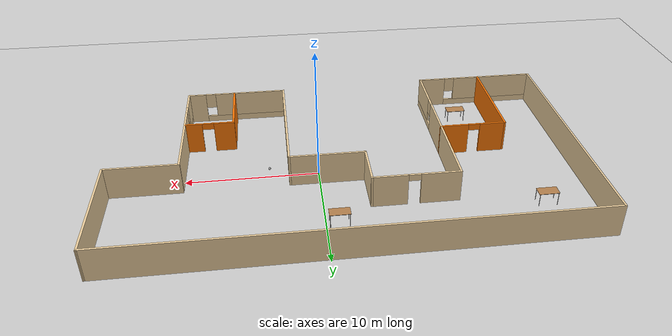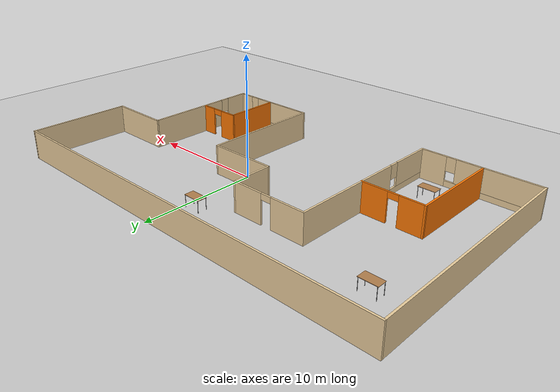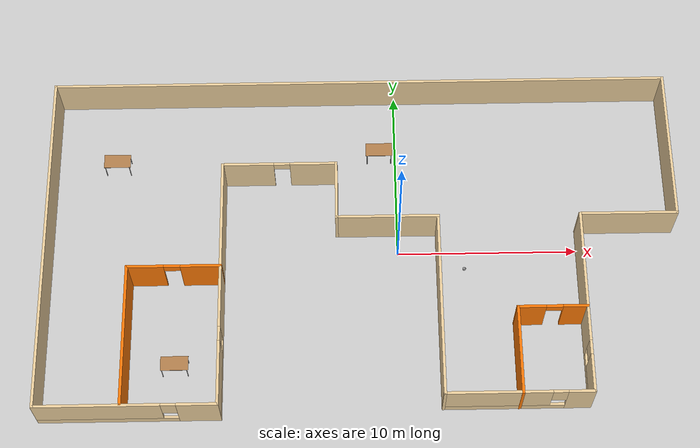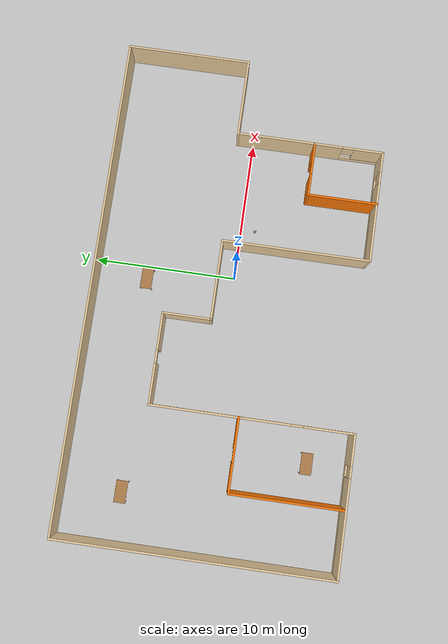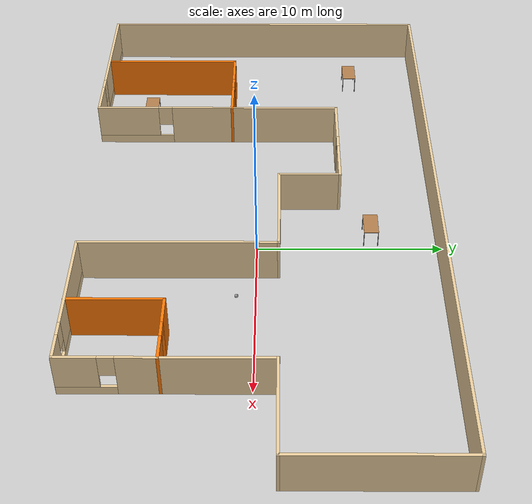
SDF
<sdf version="1.6">
 <world name="default">
  <model name="ground_plane">
   <static>1</static>
   <link name="link">
    <collision name="collision">
     <geometry><plane><normal>0 0 1</normal><size>100 100</size></plane></geometry>
     <surface><friction><ode><mu>100</mu><mu2>50</mu2></ode></friction></surface>
    </collision>
    <visual name="visual">
     <cast_shadows>0</cast_shadows>
     <geometry><plane><normal>0 0 1</normal><size>100 100</size></plane></geometry>
     <material>
      <script><uri>file://media/materials/scripts/gazebo.material</uri><name>Gazebo/Grey</name></script>
     </material>
    </visual>
   </link>
  </model>
  <model name="appartment">
   <pose>-2.009 0.109616 0 0 -0 0</pose>
   <link name="Wall_0">
    <collision name="Wall_0_Collision">
     <geometry><box><size>19.4596 0.15 2.5</size></box></geometry>
     <pose>0 0 1.25 0 -0 0</pose>
    </collision>
    <visual name="Wall_0_Visual">
     <pose>0 0 1.25 0 -0 0</pose>
     <geometry><box><size>19.4596 0.15 2.5</size></box></geometry>
     <material>
      <script><uri>file://media/materials/scripts/gazebo.material</uri><name>Gazebo/Grey</name></script>
      <ambient>0.921569 0.807843 0.615686 1</ambient>
     </material>
     <meta><layer>0</layer></meta>
    </visual>
    <pose>-17.4083 -0.020065 0 0 -0 1.5708</pose>
   </link>
   <link name="Wall_1">
    <collision name="Wall_1_Collision">
     <geometry><box><size>34.9669 0.15 2.5</size></box></geometry>
     <pose>0 0 1.25 0 -0 0</pose>
    </collision>
    <visual name="Wall_1_Visual">
     <pose>0 0 1.25 0 -0 0</pose>
     <geometry><box><size>34.9669 0.15 2.5</size></box></geometry>
     <material>
      <script><uri>file://media/materials/scripts/gazebo.material</uri><name>Gazebo/Grey</name></script>
      <ambient>0.921569 0.807843 0.615686 1</ambient>
     </material>
     <meta><layer>0</layer></meta>
    </visual>
    <pose>0 9.65496 0 0 -0 0.00115</pose>
   </link>
   <link name="Wall_10">
    <pose>-7.7415 -2.62504 0 0 0 -1.57076</pose>
    <visual name="Wall_10_Visual_0">
     <pose>-2.2093 0 1.25 0 -0 0</pose>
     <geometry><box><size>9.8314 0.15 2.5</size></box></geometry>
     <material>
      <script><uri>file://media/materials/scripts/gazebo.material</uri><name>Gazebo/Grey</name></script>
      <ambient>0.921569 0.807843 0.615686 1</ambient>
     </material>
     <meta><layer>0</layer></meta>
    </visual>
    <collision name="Wall_10_Collision_0">
     <geometry><box><size>9.8314 0.15 2.5</size></box></geometry>
     <pose>-2.2093 0 1.25 0 -0 0</pose>
    </collision>
    <visual name="Wall_10_Visual_1">
     <pose>4.9157 0 0.25 0 -0 0</pose>
     <geometry><box><size>4.4186 0.15 0.5</size></box></geometry>
     <material>
      <script><uri>file://media/materials/scripts/gazebo.material</uri><name>Gazebo/Grey</name></script>
      <ambient>0.921569 0.807843 0.615686 1</ambient>
     </material>
     <meta><layer>0</layer></meta>
    </visual>
    <collision name="Wall_10_Collision_1">
     <geometry><box><size>4.4186 0.15 0.5</size></box></geometry>
     <pose>4.9157 0 0.25 0 -0 0</pose>
    </collision>
    <visual name="Wall_10_Visual_2">
     <pose>5.3157 0 1.5 0 -0 0</pose>
     <geometry><box><size>3.6186 0.15 2</size></box></geometry>
     <material>
      <script><uri>file://media/materials/scripts/gazebo.material</uri><name>Gazebo/Grey</name></script>
      <ambient>0.921569 0.807843 0.615686 1</ambient>
     </material>
     <meta><layer>0</layer></meta>
    </visual>
    <collision name="Wall_10_Collision_2">
     <geometry><box><size>3.6186 0.15 2</size></box></geometry>
     <pose>5.3157 0 1.5 0 -0 0</pose>
    </collision>
    <visual name="Wall_10_Visual_3">
     <pose>3.1064 0 1.9 0 -0 0</pose>
     <geometry><box><size>0.8 0.15 1.2</size></box></geometry>
     <material>
      <script><uri>file://media/materials/scripts/gazebo.material</uri><name>Gazebo/Grey</name></script>
      <ambient>0.921569 0.807843 0.615686 1</ambient>
     </material>
     <meta><layer>0</layer></meta>
    </visual>
    <collision name="Wall_10_Collision_3">
     <geometry><box><size>0.8 0.15 1.2</size></box></geometry>
     <pose>3.1064 0 1.9 0 -0 0</pose>
    </collision>
   </link>
   <link name="Wall_11">
    <pose>-12.5748 -9.67507 0 0 -0 3.14159</pose>
    <visual name="Wall_11_Visual_0">
     <pose>-3.79039 0 1.25 0 -0 0</pose>
     <geometry><box><size>2.23622 0.15 2.5</size></box></geometry>
     <material>
      <script><uri>file://media/materials/scripts/gazebo.material</uri><name>Gazebo/Grey</name></script>
      <ambient>0.921569 0.807843 0.615686 1</ambient>
     </material>
     <meta><layer>0</layer></meta>
    </visual>
    <collision name="Wall_11_Collision_0">
     <geometry><box><size>2.23622 0.15 2.5</size></box></geometry>
     <pose>-3.79039 0 1.25 0 -0 0</pose>
    </collision>
    <visual name="Wall_11_Visual_1">
     <pose>1.11811 0 0.25 0 -0 0</pose>
     <geometry><box><size>7.58078 0.15 0.5</size></box></geometry>
     <material>
      <script><uri>file://media/materials/scripts/gazebo.material</uri><name>Gazebo/Grey</name></script>
      <ambient>0.921569 0.807843 0.615686 1</ambient>
     </material>
     <meta><layer>0</layer></meta>
    </visual>
    <collision name="Wall_11_Collision_1">
     <geometry><box><size>7.58078 0.15 0.5</size></box></geometry>
     <pose>1.11811 0 0.25 0 -0 0</pose>
    </collision>
    <visual name="Wall_11_Visual_2">
     <pose>1.51811 0 1.5 0 -0 0</pose>
     <geometry><box><size>6.78078 0.15 2</size></box></geometry>
     <material>
      <script><uri>file://media/materials/scripts/gazebo.material</uri><name>Gazebo/Grey</name></script>
      <ambient>0.921569 0.807843 0.615686 1</ambient>
     </material>
     <meta><layer>0</layer></meta>
    </visual>
    <collision name="Wall_11_Collision_2">
     <geometry><box><size>6.78078 0.15 2</size></box></geometry>
     <pose>1.51811 0 1.5 0 -0 0</pose>
    </collision>
    <visual name="Wall_11_Visual_3">
     <pose>-2.27228 0 1.9 0 -0 0</pose>
     <geometry><box><size>0.8 0.15 1.2</size></box></geometry>
     <material>
      <script><uri>file://media/materials/scripts/gazebo.material</uri><name>Gazebo/Grey</name></script>
      <ambient>0.921569 0.807843 0.615686 1</ambient>
     </material>
     <meta><layer>0</layer></meta>
    </visual>
    <collision name="Wall_11_Collision_3">
     <geometry><box><size>0.8 0.15 1.2</size></box></geometry>
     <pose>-2.27228 0 1.9 0 -0 0</pose>
    </collision>
   </link>
   <link name="Wall_13">
    <collision name="Wall_13_Collision">
     <geometry><box><size>5 0.15 2.5</size></box></geometry>
     <pose>0 0 1.25 0 -0 0</pose>
    </collision>
    <visual name="Wall_13_Visual">
     <pose>0 0 1.25 0 -0 0</pose>
     <geometry><box><size>5 0.15 2.5</size></box></geometry>
     <material>
      <script><uri>file://media/materials/scripts/gazebo.material</uri><name>Gazebo/Grey</name></script>
      <ambient>0.996078 0.47451 0.0196078 1</ambient>
     </material>
     <meta><layer>0</layer></meta>
    </visual>
    <pose>8.30689 -6.85928 0 0 -0 1.57087</pose>
   </link>
   <link name="Wall_14">
    <pose>10.1827 -4.43407 0 0 -0 0</pose>
    <visual name="Wall_14_Visual_0">
     <pose>-1.15332 0 1.25 0 -0 0</pose>
     <geometry><box><size>1.59536 0.15 2.5</size></box></geometry>
     <material>
      <script><uri>file://media/materials/scripts/gazebo.material</uri><name>Gazebo/Grey</name></script>
      <ambient>0.996078 0.47451 0.0196078 1</ambient>
     </material>
     <meta><layer>0</layer></meta>
    </visual>
    <collision name="Wall_14_Collision_0">
     <geometry><box><size>1.59536 0.15 2.5</size></box></geometry>
     <pose>-1.15332 0 1.25 0 -0 0</pose>
    </collision>
    <visual name="Wall_14_Visual_1">
     <pose>1.24768 0 1.25 0 -0 0</pose>
     <geometry><box><size>1.40664 0.15 2.5</size></box></geometry>
     <material>
      <script><uri>file://media/materials/scripts/gazebo.material</uri><name>Gazebo/Grey</name></script>
      <ambient>0.996078 0.47451 0.0196078 1</ambient>
     </material>
     <meta><layer>0</layer></meta>
    </visual>
    <collision name="Wall_14_Collision_1">
     <geometry><box><size>1.40664 0.15 2.5</size></box></geometry>
     <pose>1.24768 0 1.25 0 -0 0</pose>
    </collision>
    <visual name="Wall_14_Visual_2">
     <pose>0.094359 0 2.25 0 -0 0</pose>
     <geometry><box><size>0.9 0.15 0.5</size></box></geometry>
     <material>
      <script><uri>file://media/materials/scripts/gazebo.material</uri><name>Gazebo/Grey</name></script>
      <ambient>0.996078 0.47451 0.0196078 1</ambient>
     </material>
     <meta><layer>0</layer></meta>
    </visual>
    <collision name="Wall_14_Collision_2">
     <geometry><box><size>0.9 0.15 0.5</size></box></geometry>
     <pose>0.094359 0 2.25 0 -0 0</pose>
    </collision>
   </link>
   <link name="Wall_16">
    <pose>-10.2844 -1.75625 0 0 -0 3.14159</pose>
    <visual name="Wall_16_Visual_0">
     <pose>-1.4933 0 1.25 0 -0 0</pose>
     <geometry><box><size>2.26341 0.15 2.5</size></box></geometry>
     <material>
      <script><uri>file://media/materials/scripts/gazebo.material</uri><name>Gazebo/Grey</name></script>
      <ambient>0.996078 0.47451 0.0196078 1</ambient>
     </material>
     <meta><layer>0</layer></meta>
    </visual>
    <collision name="Wall_16_Collision_0">
     <geometry><box><size>2.26341 0.15 2.5</size></box></geometry>
     <pose>-1.4933 0 1.25 0 -0 0</pose>
    </collision>
    <visual name="Wall_16_Visual_1">
     <pose>1.5817 0 1.25 0 -0 0</pose>
     <geometry><box><size>2.08659 0.15 2.5</size></box></geometry>
     <material>
      <script><uri>file://media/materials/scripts/gazebo.material</uri><name>Gazebo/Grey</name></script>
      <ambient>0.996078 0.47451 0.0196078 1</ambient>
     </material>
     <meta><layer>0</layer></meta>
    </visual>
    <collision name="Wall_16_Collision_1">
     <geometry><box><size>2.08659 0.15 2.5</size></box></geometry>
     <pose>1.5817 0 1.25 0 -0 0</pose>
    </collision>
    <visual name="Wall_16_Visual_2">
     <pose>0.088408 0 2.25 0 -0 0</pose>
     <geometry><box><size>0.9 0.15 0.5</size></box></geometry>
     <material>
      <script><uri>file://media/materials/scripts/gazebo.material</uri><name>Gazebo/Grey</name></script>
      <ambient>0.996078 0.47451 0.0196078 1</ambient>
     </material>
     <meta><layer>0</layer></meta>
    </visual>
    <collision name="Wall_16_Collision_2">
     <geometry><box><size>0.9 0.15 0.5</size></box></geometry>
     <pose>0.088408 0 2.25 0 -0 0</pose>
    </collision>
   </link>
   <link name="Wall_17">
    <collision name="Wall_17_Collision">
     <geometry><box><size>8 0.15 2.5</size></box></geometry>
     <pose>0 0 1.25 0 -0 0</pose>
    </collision>
    <visual name="Wall_17_Visual">
     <pose>0 0 1.25 0 -0 0</pose>
     <geometry><box><size>8 0.15 2.5</size></box></geometry>
     <material>
      <script><uri>file://media/materials/scripts/gazebo.material</uri><name>Gazebo/Grey</name></script>
      <ambient>0.996078 0.47451 0.0196078 1</ambient>
     </material>
     <meta><layer>0</layer></meta>
    </visual>
    <pose>-12.8344 -5.68124 0 0 0 -1.5708</pose>
   </link>
   <link name="Wall_2">
    <collision name="Wall_2_Collision">
     <geometry><box><size>8.75 0.15 2.5</size></box></geometry>
     <pose>0 0 1.25 0 -0 0</pose>
    </collision>
    <visual name="Wall_2_Visual">
     <pose>0 0 1.25 0 -0 0</pose>
     <geometry><box><size>8.75 0.15 2.5</size></box></geometry>
     <material>
      <script><uri>file://media/materials/scripts/gazebo.material</uri><name>Gazebo/Grey</name></script>
      <ambient>0.921569 0.807843 0.615686 1</ambient>
     </material>
     <meta><layer>0</layer></meta>
    </visual>
    <pose>17.4083 5.37498 0 0 0 -1.5708</pose>
   </link>
   <link name="Wall_3">
    <collision name="Wall_3_Collision">
     <geometry><box><size>5.5 0.15 2.5</size></box></geometry>
     <pose>0 0 1.25 0 -0 0</pose>
    </collision>
    <visual name="Wall_3_Visual">
     <pose>0 0 1.25 0 -0 0</pose>
     <geometry><box><size>5.5 0.15 2.5</size></box></geometry>
     <material>
      <script><uri>file://media/materials/scripts/gazebo.material</uri><name>Gazebo/Grey</name></script>
      <ambient>0.921569 0.807843 0.615686 1</ambient>
     </material>
     <meta><layer>0</layer></meta>
    </visual>
    <pose>14.7333 1.07498 0 0 -0 3.14159</pose>
   </link>
   <link name="Wall_4">
    <pose>12.0583 -4.10002 0 0 0 -1.5708</pose>
    <visual name="Wall_4_Visual_0">
     <pose>-1.46402 0 1.25 0 -0 0</pose>
     <geometry><box><size>7.57196 0.15 2.5</size></box></geometry>
     <material>
      <script><uri>file://media/materials/scripts/gazebo.material</uri><name>Gazebo/Grey</name></script>
      <ambient>0.921569 0.807843 0.615686 1</ambient>
     </material>
     <meta><layer>0</layer></meta>
    </visual>
    <collision name="Wall_4_Collision_0">
     <geometry><box><size>7.57196 0.15 2.5</size></box></geometry>
     <pose>-1.46402 0 1.25 0 -0 0</pose>
    </collision>
    <visual name="Wall_4_Visual_1">
     <pose>3.78598 0 0.25 0 -0 0</pose>
     <geometry><box><size>2.92803 0.15 0.5</size></box></geometry>
     <material>
      <script><uri>file://media/materials/scripts/gazebo.material</uri><name>Gazebo/Grey</name></script>
      <ambient>0.921569 0.807843 0.615686 1</ambient>
     </material>
     <meta><layer>0</layer></meta>
    </visual>
    <collision name="Wall_4_Collision_1">
     <geometry><box><size>2.92803 0.15 0.5</size></box></geometry>
     <pose>3.78598 0 0.25 0 -0 0</pose>
    </collision>
    <visual name="Wall_4_Visual_2">
     <pose>4.18598 0 1.5 0 -0 0</pose>
     <geometry><box><size>2.12804 0.15 2</size></box></geometry>
     <material>
      <script><uri>file://media/materials/scripts/gazebo.material</uri><name>Gazebo/Grey</name></script>
      <ambient>0.921569 0.807843 0.615686 1</ambient>
     </material>
     <meta><layer>0</layer></meta>
    </visual>
    <collision name="Wall_4_Collision_2">
     <geometry><box><size>2.12804 0.15 2</size></box></geometry>
     <pose>4.18598 0 1.5 0 -0 0</pose>
    </collision>
    <visual name="Wall_4_Visual_3">
     <pose>2.72196 0 1.9 0 -0 0</pose>
     <geometry><box><size>0.8 0.15 1.2</size></box></geometry>
     <material>
      <script><uri>file://media/materials/scripts/gazebo.material</uri><name>Gazebo/Grey</name></script>
      <ambient>0.921569 0.807843 0.615686 1</ambient>
     </material>
     <meta><layer>0</layer></meta>
    </visual>
    <collision name="Wall_4_Collision_3">
     <geometry><box><size>0.8 0.15 1.2</size></box></geometry>
     <pose>2.72196 0 1.9 0 -0 0</pose>
    </collision>
   </link>
   <link name="Wall_5">
    <pose>8.13328 -9.27502 0 0 -0 3.14159</pose>
    <visual name="Wall_5_Visual_0">
     <pose>-3.2719 0 1.25 0 -0 0</pose>
     <geometry><box><size>1.4562 0.15 2.5</size></box></geometry>
     <material>
      <script><uri>file://media/materials/scripts/gazebo.material</uri><name>Gazebo/Grey</name></script>
      <ambient>0.921569 0.807843 0.615686 1</ambient>
     </material>
     <meta><layer>0</layer></meta>
    </visual>
    <collision name="Wall_5_Collision_0">
     <geometry><box><size>1.4562 0.15 2.5</size></box></geometry>
     <pose>-3.2719 0 1.25 0 -0 0</pose>
    </collision>
    <visual name="Wall_5_Visual_1">
     <pose>0.728102 0 0.25 0 -0 0</pose>
     <geometry><box><size>6.5438 0.15 0.5</size></box></geometry>
     <material>
      <script><uri>file://media/materials/scripts/gazebo.material</uri><name>Gazebo/Grey</name></script>
      <ambient>0.921569 0.807843 0.615686 1</ambient>
     </material>
     <meta><layer>0</layer></meta>
    </visual>
    <collision name="Wall_5_Collision_1">
     <geometry><box><size>6.5438 0.15 0.5</size></box></geometry>
     <pose>0.728102 0 0.25 0 -0 0</pose>
    </collision>
    <visual name="Wall_5_Visual_2">
     <pose>1.1281 0 1.5 0 -0 0</pose>
     <geometry><box><size>5.7438 0.15 2</size></box></geometry>
     <material>
      <script><uri>file://media/materials/scripts/gazebo.material</uri><name>Gazebo/Grey</name></script>
      <ambient>0.921569 0.807843 0.615686 1</ambient>
     </material>
     <meta><layer>0</layer></meta>
    </visual>
    <collision name="Wall_5_Collision_2">
     <geometry><box><size>5.7438 0.15 2</size></box></geometry>
     <pose>1.1281 0 1.5 0 -0 0</pose>
    </collision>
    <visual name="Wall_5_Visual_3">
     <pose>-2.14379 0 1.9 0 -0 0</pose>
     <geometry><box><size>0.8 0.15 1.2</size></box></geometry>
     <material>
      <script><uri>file://media/materials/scripts/gazebo.material</uri><name>Gazebo/Grey</name></script>
      <ambient>0.921569 0.807843 0.615686 1</ambient>
     </material>
     <meta><layer>0</layer></meta>
    </visual>
    <collision name="Wall_5_Collision_3">
     <geometry><box><size>0.8 0.15 1.2</size></box></geometry>
     <pose>-2.14379 0 1.9 0 -0 0</pose>
    </collision>
   </link>
   <link name="Wall_6">
    <collision name="Wall_6_Collision">
     <geometry><box><size>10.5 0.15 2.5</size></box></geometry>
     <pose>0 0 1.25 0 -0 0</pose>
    </collision>
    <visual name="Wall_6_Visual">
     <pose>0 0 1.25 0 -0 0</pose>
     <geometry><box><size>10.5 0.15 2.5</size></box></geometry>
     <material>
      <script><uri>file://media/materials/scripts/gazebo.material</uri><name>Gazebo/Grey</name></script>
      <ambient>0.921569 0.807843 0.615686 1</ambient>
     </material>
     <meta><layer>0</layer></meta>
    </visual>
    <pose>4.20828 -4.10002 0 0 -0 1.5708</pose>
   </link>
   <link name="Wall_7">
    <collision name="Wall_7_Collision">
     <geometry><box><size>5.75 0.15 2.5</size></box></geometry>
     <pose>0 0 1.25 0 -0 0</pose>
    </collision>
    <visual name="Wall_7_Visual">
     <pose>0 0 1.25 0 -0 0</pose>
     <geometry><box><size>5.75 0.15 2.5</size></box></geometry>
     <material>
      <script><uri>file://media/materials/scripts/gazebo.material</uri><name>Gazebo/Grey</name></script>
      <ambient>0.921569 0.807843 0.615686 1</ambient>
     </material>
     <meta><layer>0</layer></meta>
    </visual>
    <pose>1.40828 1.07498 0 0 -0 3.14159</pose>
   </link>
   <link name="Wall_8">
    <collision name="Wall_8_Collision">
     <geometry><box><size>3.5 0.15 2.5</size></box></geometry>
     <pose>0 0 1.25 0 -0 0</pose>
    </collision>
    <visual name="Wall_8_Visual">
     <pose>0 0 1.25 0 -0 0</pose>
     <geometry><box><size>3.5 0.15 2.5</size></box></geometry>
     <material>
      <script><uri>file://media/materials/scripts/gazebo.material</uri><name>Gazebo/Grey</name></script>
      <ambient>0.921569 0.807843 0.615686 1</ambient>
     </material>
     <meta><layer>0</layer></meta>
    </visual>
    <pose>-1.39172 2.74998 0 0 -0 1.5708</pose>
   </link>
   <link name="Wall_9">
    <pose>-4.56672 4.42498 0 0 -0 3.14159</pose>
    <visual name="Wall_9_Visual_0">
     <pose>-1.91954 0 1.25 0 -0 0</pose>
     <geometry><box><size>2.66093 0.15 2.5</size></box></geometry>
     <material>
      <script><uri>file://media/materials/scripts/gazebo.material</uri><name>Gazebo/Grey</name></script>
      <ambient>0.921569 0.807843 0.615686 1</ambient>
     </material>
     <meta><layer>0</layer></meta>
    </visual>
    <collision name="Wall_9_Collision_0">
     <geometry><box><size>2.66093 0.15 2.5</size></box></geometry>
     <pose>-1.91954 0 1.25 0 -0 0</pose>
    </collision>
    <visual name="Wall_9_Visual_1">
     <pose>1.78046 0 1.25 0 -0 0</pose>
     <geometry><box><size>2.93907 0.15 2.5</size></box></geometry>
     <material>
      <script><uri>file://media/materials/scripts/gazebo.material</uri><name>Gazebo/Grey</name></script>
      <ambient>0.921569 0.807843 0.615686 1</ambient>
     </material>
     <meta><layer>0</layer></meta>
    </visual>
    <collision name="Wall_9_Collision_1">
     <geometry><box><size>2.93907 0.15 2.5</size></box></geometry>
     <pose>1.78046 0 1.25 0 -0 0</pose>
    </collision>
    <visual name="Wall_9_Visual_2">
     <pose>-0.139072 0 2.25 0 -0 0</pose>
     <geometry><box><size>0.9 0.15 0.5</size></box></geometry>
     <material>
      <script><uri>file://media/materials/scripts/gazebo.material</uri><name>Gazebo/Grey</name></script>
      <ambient>0.921569 0.807843 0.615686 1</ambient>
     </material>
     <meta><layer>0</layer></meta>
    </visual>
    <collision name="Wall_9_Collision_2">
     <geometry><box><size>0.9 0.15 0.5</size></box></geometry>
     <pose>-0.139072 0 2.25 0 -0 0</pose>
    </collision>
   </link>
   <static>1</static>
  </model>
  <model name="table">
   <static>1</static>
   <link name="link">
    <collision name="surface">
     <pose>0 0 1 0 -0 0</pose>
     <geometry><box><size>1.5 0.8 0.03</size></box></geometry>
     <surface><friction><ode><mu>0.6</mu><mu2>0.6</mu2></ode></friction></surface>
    </collision>
    <visual name="visual1">
     <pose>0 0 1 0 -0 0</pose>
     <geometry><box><size>1.5 0.8 0.03</size></box></geometry>
     <material>
      <script><uri>file://media/materials/scripts/gazebo.material</uri><name>Gazebo/Wood</name></script>
     </material>
    </visual>
    <collision name="front_left_leg">
     <pose>0.68 0.38 0.5 0 -0 0</pose>
     <geometry><cylinder><radius>0.02</radius><length>1</length></cylinder></geometry>
    </collision>
    <visual name="front_left_leg">
     <pose>0.68 0.38 0.5 0 -0 0</pose>
     <geometry><cylinder><radius>0.02</radius><length>1</length></cylinder></geometry>
     <material>
      <script><uri>file://media/materials/scripts/gazebo.material</uri><name>Gazebo/Grey</name></script>
     </material>
    </visual>
    <collision name="front_right_leg">
     <pose>0.68 -0.38 0.5 0 -0 0</pose>
     <geometry><cylinder><radius>0.02</radius><length>1</length></cylinder></geometry>
    </collision>
    <visual name="front_right_leg">
     <pose>0.68 -0.38 0.5 0 -0 0</pose>
     <geometry><cylinder><radius>0.02</radius><length>1</length></cylinder></geometry>
     <material>
      <script><uri>file://media/materials/scripts/gazebo.material</uri><name>Gazebo/Grey</name></script>
     </material>
    </visual>
    <collision name="back_right_leg">
     <pose>-0.68 -0.38 0.5 0 -0 0</pose>
     <geometry><cylinder><radius>0.02</radius><length>1</length></cylinder></geometry>
    </collision>
    <visual name="back_right_leg">
     <pose>-0.68 -0.38 0.5 0 -0 0</pose>
     <geometry><cylinder><radius>0.02</radius><length>1</length></cylinder></geometry>
     <material>
      <script><uri>file://media/materials/scripts/gazebo.material</uri><name>Gazebo/Grey</name></script>
     </material>
    </visual>
    <collision name="back_left_leg">
     <pose>-0.68 0.38 0.5 0 -0 0</pose>
     <geometry><cylinder><radius>0.02</radius><length>1</length></cylinder></geometry>
    </collision>
    <visual name="back_left_leg">
     <pose>-0.68 0.38 0.5 0 -0 0</pose>
     <geometry><cylinder><radius>0.02</radius><length>1</length></cylinder></geometry>
     <material>
      <script><uri>file://media/materials/scripts/gazebo.material</uri><name>Gazebo/Grey</name></script>
     </material>
    </visual>
   </link>
   <pose>-0.947765 6.15557 0 0 -0 0</pose>
  </model>
  <model name="table_0">
   <static>1</static>
   <link name="link">
    <collision name="surface">
     <pose>0 0 1 0 -0 0</pose>
     <geometry><box><size>1.5 0.8 0.03</size></box></geometry>
     <surface><friction><ode><mu>0.6</mu><mu2>0.6</mu2></ode></friction></surface>
    </collision>
    <visual name="visual1">
     <pose>0 0 1 0 -0 0</pose>
     <geometry><box><size>1.5 0.8 0.03</size></box></geometry>
     <material>
      <script><uri>file://media/materials/scripts/gazebo.material</uri><name>Gazebo/Wood</name></script>
     </material>
    </visual>
    <collision name="front_left_leg">
     <pose>0.68 0.38 0.5 0 -0 0</pose>
     <geometry><cylinder><radius>0.02</radius><length>1</length></cylinder></geometry>
    </collision>
    <visual name="front_left_leg">
     <pose>0.68 0.38 0.5 0 -0 0</pose>
     <geometry><cylinder><radius>0.02</radius><length>1</length></cylinder></geometry>
     <material>
      <script><uri>file://media/materials/scripts/gazebo.material</uri><name>Gazebo/Grey</name></script>
     </material>
    </visual>
    <collision name="front_right_leg">
     <pose>0.68 -0.38 0.5 0 -0 0</pose>
     <geometry><cylinder><radius>0.02</radius><length>1</length></cylinder></geometry>
    </collision>
    <visual name="front_right_leg">
     <pose>0.68 -0.38 0.5 0 -0 0</pose>
     <geometry><cylinder><radius>0.02</radius><length>1</length></cylinder></geometry>
     <material>
      <script><uri>file://media/materials/scripts/gazebo.material</uri><name>Gazebo/Grey</name></script>
     </material>
    </visual>
    <collision name="back_right_leg">
     <pose>-0.68 -0.38 0.5 0 -0 0</pose>
     <geometry><cylinder><radius>0.02</radius><length>1</length></cylinder></geometry>
    </collision>
    <visual name="back_right_leg">
     <pose>-0.68 -0.38 0.5 0 -0 0</pose>
     <geometry><cylinder><radius>0.02</radius><length>1</length></cylinder></geometry>
     <material>
      <script><uri>file://media/materials/scripts/gazebo.material</uri><name>Gazebo/Grey</name></script>
     </material>
    </visual>
    <collision name="back_left_leg">
     <pose>-0.68 0.38 0.5 0 -0 0</pose>
     <geometry><cylinder><radius>0.02</radius><length>1</length></cylinder></geometry>
    </collision>
    <visual name="back_left_leg">
     <pose>-0.68 0.38 0.5 0 -0 0</pose>
     <geometry><cylinder><radius>0.02</radius><length>1</length></cylinder></geometry>
     <material>
      <script><uri>file://media/materials/scripts/gazebo.material</uri><name>Gazebo/Grey</name></script>
     </material>
    </visual>
   </link>
   <pose>-12.2262 -6.72388 0 0 -0 0</pose>
  </model>
  <model name="table_1">
   <static>1</static>
   <link name="link">
    <collision name="surface">
     <pose>0 0 1 0 -0 0</pose>
     <geometry><box><size>1.5 0.8 0.03</size></box></geometry>
     <surface><friction><ode><mu>0.6</mu><mu2>0.6</mu2></ode></friction></surface>
    </collision>
    <visual name="visual1">
     <pose>0 0 1 0 -0 0</pose>
     <geometry><box><size>1.5 0.8 0.03</size></box></geometry>
     <material>
      <script><uri>file://media/materials/scripts/gazebo.material</uri><name>Gazebo/Wood</name></script>
     </material>
    </visual>
    <collision name="front_left_leg">
     <pose>0.68 0.38 0.5 0 -0 0</pose>
     <geometry><cylinder><radius>0.02</radius><length>1</length></cylinder></geometry>
    </collision>
    <visual name="front_left_leg">
     <pose>0.68 0.38 0.5 0 -0 0</pose>
     <geometry><cylinder><radius>0.02</radius><length>1</length></cylinder></geometry>
     <material>
      <script><uri>file://media/materials/scripts/gazebo.material</uri><name>Gazebo/Grey</name></script>
     </material>
    </visual>
    <collision name="front_right_leg">
     <pose>0.68 -0.38 0.5 0 -0 0</pose>
     <geometry><cylinder><radius>0.02</radius><length>1</length></cylinder></geometry>
    </collision>
    <visual name="front_right_leg">
     <pose>0.68 -0.38 0.5 0 -0 0</pose>
     <geometry><cylinder><radius>0.02</radius><length>1</length></cylinder></geometry>
     <material>
      <script><uri>file://media/materials/scripts/gazebo.material</uri><name>Gazebo/Grey</name></script>
     </material>
    </visual>
    <collision name="back_right_leg">
     <pose>-0.68 -0.38 0.5 0 -0 0</pose>
     <geometry><cylinder><radius>0.02</radius><length>1</length></cylinder></geometry>
    </collision>
    <visual name="back_right_leg">
     <pose>-0.68 -0.38 0.5 0 -0 0</pose>
     <geometry><cylinder><radius>0.02</radius><length>1</length></cylinder></geometry>
     <material>
      <script><uri>file://media/materials/scripts/gazebo.material</uri><name>Gazebo/Grey</name></script>
     </material>
    </visual>
    <collision name="back_left_leg">
     <pose>-0.68 0.38 0.5 0 -0 0</pose>
     <geometry><cylinder><radius>0.02</radius><length>1</length></cylinder></geometry>
    </collision>
    <visual name="back_left_leg">
     <pose>-0.68 0.38 0.5 0 -0 0</pose>
     <geometry><cylinder><radius>0.02</radius><length>1</length></cylinder></geometry>
     <material>
      <script><uri>file://media/materials/scripts/gazebo.material</uri><name>Gazebo/Grey</name></script>
     </material>
    </visual>
   </link>
   <pose>-15.8844 5.63383 0 0 -0 0</pose>
  </model>
  <model name="my_ball">
   <link name="link_0">
    <inertial>
     <mass>1</mass>
     <inertia><ixx>0.1</ixx><ixy>0</ixy><ixz>0</ixz><iyy>0.1</iyy><iyz>0</iyz><izz>0.1</izz></inertia>
    </inertial>
    <visual name="visual">
     <geometry><sphere><radius>0.1</radius></sphere></geometry>
     <material>
      <lighting>1</lighting>
      <script><uri>file://media/materials/scripts/gazebo.material</uri><name>Gazebo/Grey</name></script>
      <shader type="pixel"><normal_map>__default__</normal_map></shader>
      <ambient>1 1 1 1</ambient>
      <diffuse>1 1 1 1</diffuse>
      <specular>1 1 1 1</specular>
      <emissive>1 1 1 1</emissive>
     </material>
    </visual>
    <collision name="collision">
     <geometry><sphere><radius>0.1</radius></sphere></geometry>
     <surface>
      <friction>
       <ode><mu>1</mu><mu2>1</mu2><fdir1>0 0 0</fdir1><slip1>0</slip1><slip2>0</slip2></ode>
       <torsional>
        <coefficient>1</coefficient>
        <patch_radius>0</patch_radius>
        <surface_radius>0</surface_radius>
        <use_patch_radius>1</use_patch_radius>
        <ode><slip>0</slip></ode>
       </torsional>
      </friction>
      <bounce><restitution_coefficient>0</restitution_coefficient><threshold>1e+06</threshold></bounce>
      <contact>
       <collide_without_contact>0</collide_without_contact>
       <collide_without_contact_bitmask>1</collide_without_contact_bitmask>
       <collide_bitmask>1</collide_bitmask>
       <ode>
        <soft_cfm>0</soft_cfm>
        <soft_erp>0.2</soft_erp>
        <kp>1e+13</kp>
        <kd>1</kd>
        <max_vel>0.01</max_vel>
        <min_depth>0</min_depth>
       </ode>
       <bullet>
        <split_impulse>1</split_impulse>
        <split_impulse_penetration_threshold>-0.01</split_impulse_penetration_threshold>
        <soft_cfm>0</soft_cfm>
        <soft_erp>0.2</soft_erp>
        <kp>1e+13</kp>
        <kd>1</kd>
       </bullet>
      </contact>
     </surface>
    </collision>
   </link>
   <static>0</static>
   <pose>3.68411 -0.996928 0.1 0 -0 0</pose>
  </model>
 </world>
</sdf>
